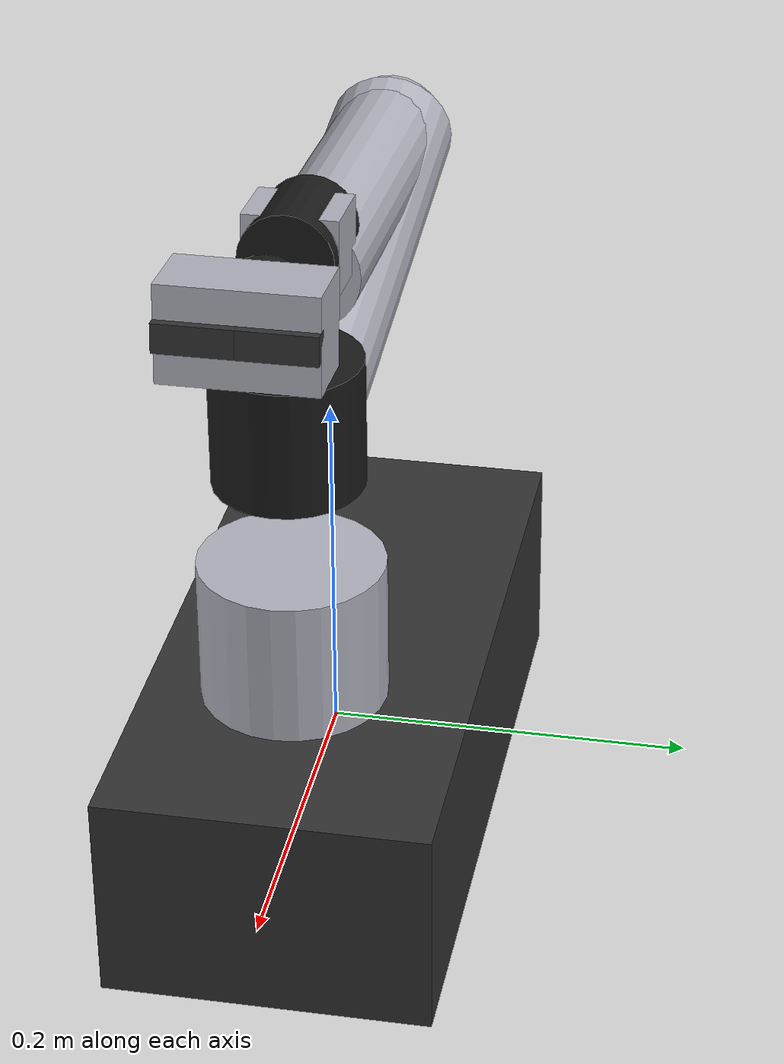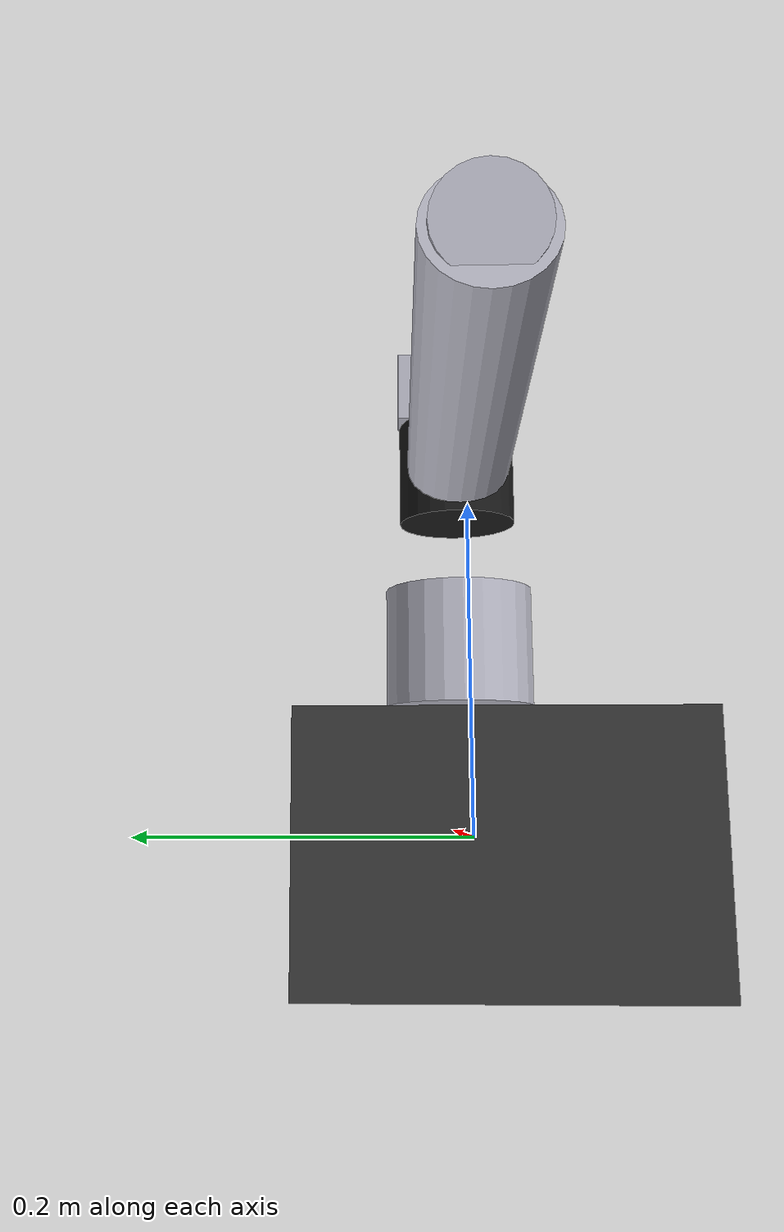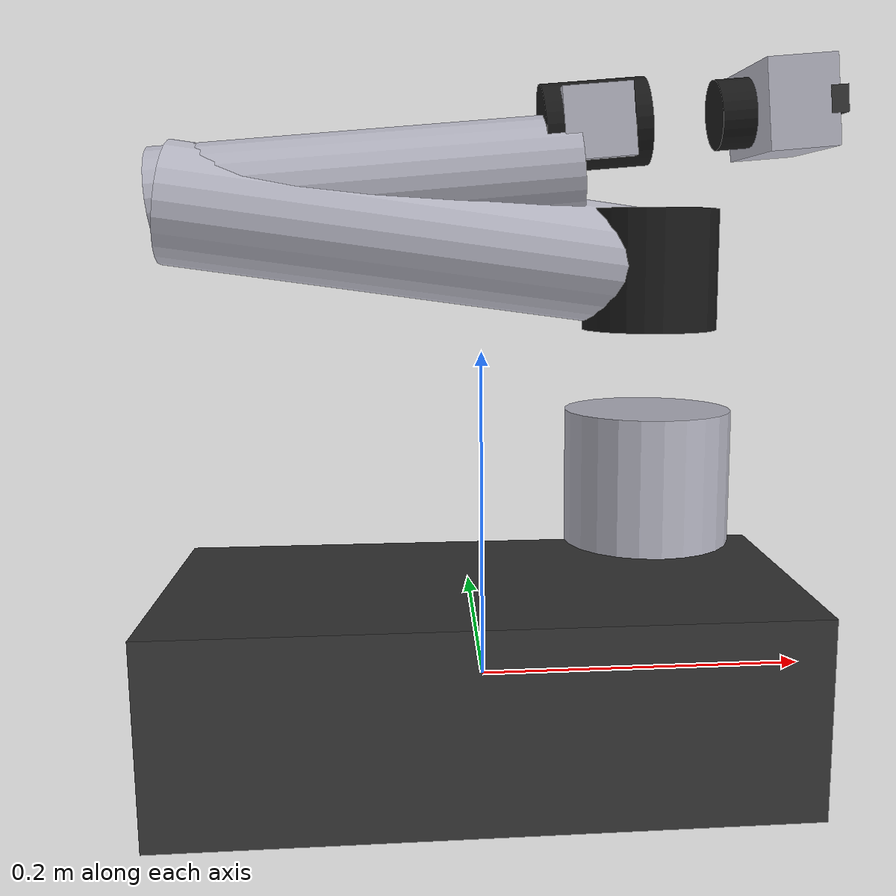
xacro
<?xml version="1.0"?>
<robot name="go2_piper" xmlns:xacro="http://www.ros.org/wiki/xacro">

  <!-- Unitree Go2 Quadruped Robot with AgileX PiPER 6-DOF Robotic Arm      -->
  <!-- Computer Graphics and Vision Lab (CGV) - Isaac Sim 6.2.0 Integration  -->

  <!-- Parameters -->
  <xacro:property name="arm_mount_x" value="0.10" />
  <xacro:property name="arm_mount_y" value="0.0" />
  <xacro:property name="arm_mount_z" value="0.125" />

  <!-- Base Trunk of Go2 -->
  <link name="base">
    <inertial>
      <origin xyz="0.021112 0.0 -0.005366" rpy="0 0 0"/>
      <mass value="6.921"/>
      <inertia ixx="0.02448" ixy="0.000121" ixz="0.000289" iyy="0.098077" iyz="0.000003" izz="0.107"/>
    </inertial>
    <visual>
      <origin xyz="0 0 0" rpy="0 0 0"/>
      <geometry>
        <box size="0.38 0.18 0.12"/>
      </geometry>
      <material name="dark_gray">
        <color rgba="0.2 0.2 0.2 1.0"/>
      </material>
    </visual>
    <collision>
      <origin xyz="0 0 0" rpy="0 0 0"/>
      <geometry>
        <box size="0.38 0.18 0.12"/>
      </geometry>
    </collision>
  </link>

  <!-- Mounting plate for PiPER on Go2 Top Deck -->
  <joint name="go2_to_piper_mount" type="fixed">
    <origin xyz="${arm_mount_x} ${arm_mount_y} ${arm_mount_z}" rpy="0 0 0"/>
    <parent link="base"/>
    <child link="arm_base_link"/>
  </joint>

  <!-- PiPER Arm Base -->
  <link name="arm_base_link">
    <inertial>
      <origin xyz="-0.00474 0.000026 0.04145" rpy="0 0 0"/>
      <mass value="0.85"/>
      <inertia ixx="0.0012" ixy="0.0" ixz="0.0" iyy="0.0013" iyz="0.0" izz="0.0009"/>
    </inertial>
    <visual>
      <origin xyz="0 0 0" rpy="0 0 0"/>
      <geometry>
        <cylinder radius="0.05" length="0.08"/>
      </geometry>
      <material name="metallic">
        <color rgba="0.7 0.7 0.75 1.0"/>
      </material>
    </visual>
    <collision>
      <origin xyz="0 0 0" rpy="0 0 0"/>
      <geometry>
        <cylinder radius="0.05" length="0.08"/>
      </geometry>
    </collision>
  </link>

  <!-- Joint 1: Base Yaw -->
  <joint name="joint1" type="revolute">
    <origin xyz="0 0 0.123" rpy="0 0 0"/>
    <parent link="arm_base_link"/>
    <child link="link1"/>
    <axis xyz="0 0 1"/>
    <limit lower="-2.618" upper="2.168" effort="100" velocity="5.0"/>
  </joint>

  <link name="link1">
    <inertial>
      <origin xyz="0 0 0" rpy="0 0 0"/>
      <mass value="0.6"/>
      <inertia ixx="0.001" ixy="0" ixz="0" iyy="0.001" iyz="0" izz="0.0008"/>
    </inertial>
    <visual>
      <origin xyz="0 0 0" rpy="0 0 0"/>
      <geometry>
        <cylinder radius="0.04" length="0.07"/>
      </geometry>
      <material name="black">
        <color rgba="0.1 0.1 0.1 1.0"/>
      </material>
    </visual>
    <collision>
      <origin xyz="0 0 0" rpy="0 0 0"/>
      <geometry>
        <cylinder radius="0.04" length="0.07"/>
      </geometry>
    </collision>
  </link>

  <!-- Joint 2: Shoulder Pitch -->
  <joint name="joint2" type="revolute">
    <origin xyz="0 0 0" rpy="1.5708 -0.1359 -3.1416"/>
    <parent link="link1"/>
    <child link="link2"/>
    <axis xyz="0 0 1"/>
    <limit lower="0.0" upper="3.14" effort="100" velocity="5.0"/>
  </joint>

  <link name="link2">
    <inertial>
      <origin xyz="0.14 0 0" rpy="0 0 0"/>
      <mass value="0.8"/>
      <inertia ixx="0.0015" ixy="0" ixz="0" iyy="0.005" iyz="0" izz="0.005"/>
    </inertial>
    <visual>
      <origin xyz="0.14 0 0" rpy="0 1.5708 0"/>
      <geometry>
        <cylinder radius="0.035" length="0.28"/>
      </geometry>
      <material name="metallic"/>
    </visual>
    <collision>
      <origin xyz="0.14 0 0" rpy="0 1.5708 0"/>
      <geometry>
        <cylinder radius="0.035" length="0.28"/>
      </geometry>
    </collision>
  </link>

  <!-- Joint 3: Elbow Pitch -->
  <joint name="joint3" type="revolute">
    <origin xyz="0.28503 0 0" rpy="0 0 -1.7939"/>
    <parent link="link2"/>
    <child link="link3"/>
    <axis xyz="0 0 1"/>
    <limit lower="-2.967" upper="0.0" effort="100" velocity="5.0"/>
  </joint>

  <link name="link3">
    <inertial>
      <origin xyz="0 -0.12 0" rpy="0 0 0"/>
      <mass value="0.6"/>
      <inertia ixx="0.003" ixy="0" ixz="0" iyy="0.001" iyz="0" izz="0.003"/>
    </inertial>
    <visual>
      <origin xyz="0 -0.12 0" rpy="1.5708 0 0"/>
      <geometry>
        <cylinder radius="0.03" length="0.24"/>
      </geometry>
      <material name="metallic"/>
    </visual>
    <collision>
      <origin xyz="0 -0.12 0" rpy="1.5708 0 0"/>
      <geometry>
        <cylinder radius="0.03" length="0.24"/>
      </geometry>
    </collision>
  </link>

  <!-- Joint 4: Wrist Roll -->
  <joint name="joint4" type="revolute">
    <origin xyz="-0.021984 -0.25075 0" rpy="1.5708 0 0"/>
    <parent link="link3"/>
    <child link="link4"/>
    <axis xyz="0 0 1"/>
    <limit lower="-1.745" upper="1.745" effort="100" velocity="5.0"/>
  </joint>

  <link name="link4">
    <inertial>
      <origin xyz="0 0 0" rpy="0 0 0"/>
      <mass value="0.3"/>
      <inertia ixx="0.0005" ixy="0" ixz="0" iyy="0.0005" iyz="0" izz="0.0003"/>
    </inertial>
    <visual>
      <origin xyz="0 0 0" rpy="0 0 0"/>
      <geometry>
        <cylinder radius="0.025" length="0.06"/>
      </geometry>
      <material name="black"/>
    </visual>
    <collision>
      <origin xyz="0 0 0" rpy="0 0 0"/>
      <geometry>
        <cylinder radius="0.025" length="0.06"/>
      </geometry>
    </collision>
  </link>

  <!-- Joint 5: Wrist Pitch -->
  <joint name="joint5" type="revolute">
    <origin xyz="0 0 0" rpy="-1.5708 0 0"/>
    <parent link="link4"/>
    <child link="link5"/>
    <axis xyz="0 0 1"/>
    <limit lower="-1.22" upper="1.22" effort="100" velocity="5.0"/>
  </joint>

  <link name="link5">
    <inertial>
      <origin xyz="0 0 0" rpy="0 0 0"/>
      <mass value="0.25"/>
      <inertia ixx="0.0004" ixy="0" ixz="0" iyy="0.0004" iyz="0" izz="0.0002"/>
    </inertial>
    <visual>
      <origin xyz="0 0 0" rpy="0 0 0"/>
      <geometry>
        <box size="0.04 0.04 0.05"/>
      </geometry>
      <material name="metallic"/>
    </visual>
    <collision>
      <origin xyz="0 0 0" rpy="0 0 0"/>
      <geometry>
        <box size="0.04 0.04 0.05"/>
      </geometry>
    </collision>
  </link>

  <!-- Joint 6: Wrist Yaw -->
  <joint name="joint6" type="revolute">
    <origin xyz="0.000088 -0.091 0" rpy="1.5708 0 0"/>
    <parent link="link5"/>
    <child link="link6"/>
    <axis xyz="0 0 1"/>
    <limit lower="-2.0944" upper="2.0944" effort="100" velocity="3.0"/>
  </joint>

  <link name="link6">
    <inertial>
      <origin xyz="0 0 0" rpy="0 0 0"/>
      <mass value="0.2"/>
      <inertia ixx="0.0003" ixy="0" ixz="0" iyy="0.0003" iyz="0" izz="0.0002"/>
    </inertial>
    <visual>
      <origin xyz="0 0 0" rpy="0 0 0"/>
      <geometry>
        <cylinder radius="0.02" length="0.04"/>
      </geometry>
      <material name="black"/>
    </visual>
    <collision>
      <origin xyz="0 0 0" rpy="0 0 0"/>
      <geometry>
        <cylinder radius="0.02" length="0.04"/>
      </geometry>
    </collision>
  </link>

  <!-- Fixed Joint to Gripper Base -->
  <joint name="joint6_to_gripper_base" type="fixed">
    <origin xyz="0 0 0" rpy="0 0 0"/>
    <parent link="link6"/>
    <child link="gripper_base"/>
  </joint>

  <link name="gripper_base">
    <inertial>
      <origin xyz="0 0 0.02" rpy="0 0 0"/>
      <mass value="0.15"/>
      <inertia ixx="0.0002" ixy="0" ixz="0" iyy="0.0002" iyz="0" izz="0.0001"/>
    </inertial>
    <visual>
      <origin xyz="0 0 0.02" rpy="0 0 0"/>
      <geometry>
        <box size="0.05 0.08 0.04"/>
      </geometry>
      <material name="metallic"/>
    </visual>
    <collision>
      <origin xyz="0 0 0.02" rpy="0 0 0"/>
      <geometry>
        <box size="0.05 0.08 0.04"/>
      </geometry>
    </collision>
  </link>

  <!-- Gripper Finger 1 (Joint 7) -->
  <joint name="joint7" type="prismatic">
    <origin xyz="0 0 0.04" rpy="1.5708 0 0"/>
    <parent link="gripper_base"/>
    <child link="link7"/>
    <axis xyz="0 0 1"/>
    <limit lower="0.0" upper="0.035" effort="20.0" velocity="1.0"/>
  </joint>

  <link name="link7">
    <inertial>
      <origin xyz="0 0 0.02" rpy="0 0 0"/>
      <mass value="0.05"/>
      <inertia ixx="0.00005" ixy="0" ixz="0" iyy="0.00005" iyz="0" izz="0.00002"/>
    </inertial>
    <visual>
      <origin xyz="0 0 0.02" rpy="0 0 0"/>
      <geometry>
        <box size="0.015 0.01 0.04"/>
      </geometry>
      <material name="dark_gray"/>
    </visual>
    <collision>
      <origin xyz="0 0 0.02" rpy="0 0 0"/>
      <geometry>
        <box size="0.015 0.01 0.04"/>
      </geometry>
    </collision>
  </link>

  <!-- Gripper Finger 2 (Joint 8) -->
  <joint name="joint8" type="prismatic">
    <origin xyz="0 0 0.04" rpy="1.5708 0 -3.1416"/>
    <parent link="gripper_base"/>
    <child link="link8"/>
    <axis xyz="0 0 -1"/>
    <limit lower="-0.035" upper="0.0" effort="20.0" velocity="1.0"/>
  </joint>

  <link name="link8">
    <inertial>
      <origin xyz="0 0 0.02" rpy="0 0 0"/>
      <mass value="0.05"/>
      <inertia ixx="0.00005" ixy="0" ixz="0" iyy="0.00005" iyz="0" izz="0.00002"/>
    </inertial>
    <visual>
      <origin xyz="0 0 0.02" rpy="0 0 0"/>
      <geometry>
        <box size="0.015 0.01 0.04"/>
      </geometry>
      <material name="dark_gray"/>
    </visual>
    <collision>
      <origin xyz="0 0 0.02" rpy="0 0 0"/>
      <geometry>
        <box size="0.015 0.01 0.04"/>
      </geometry>
    </collision>
  </link>

</robot>
